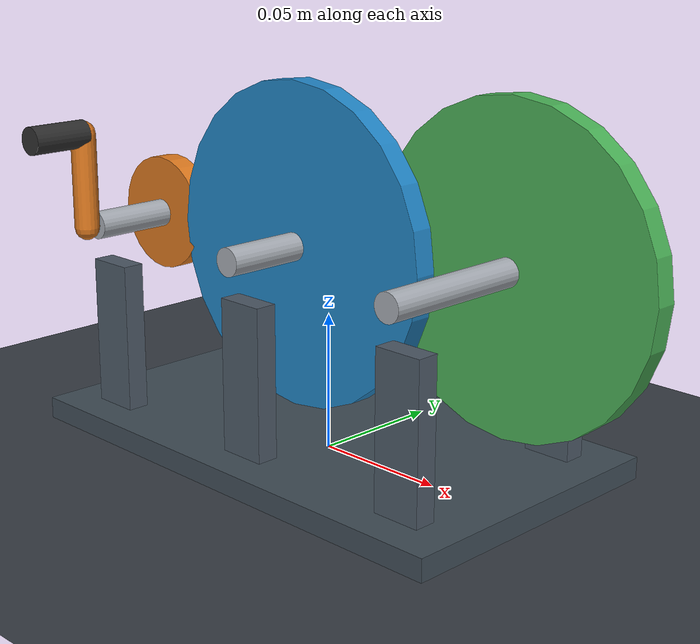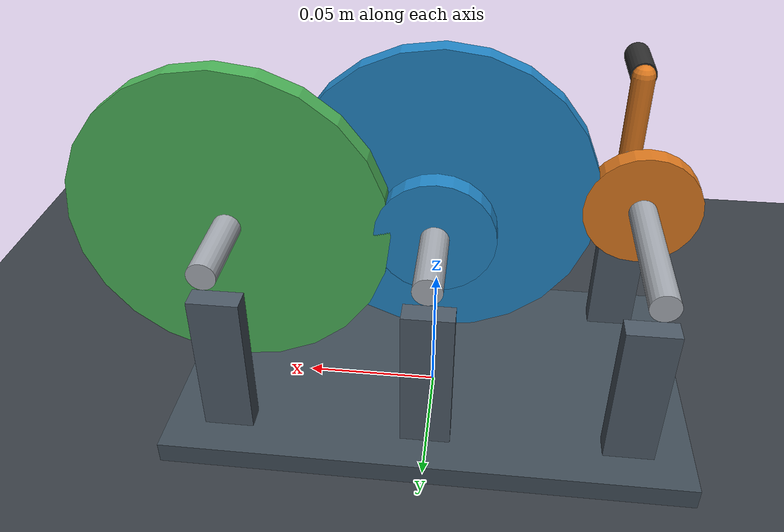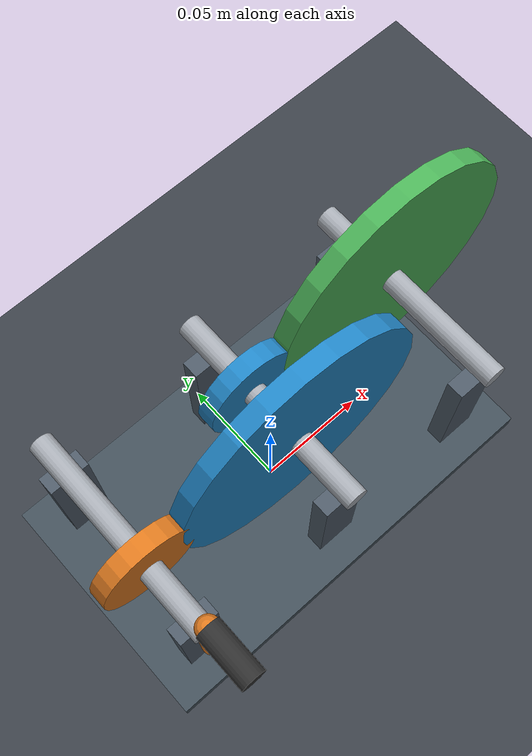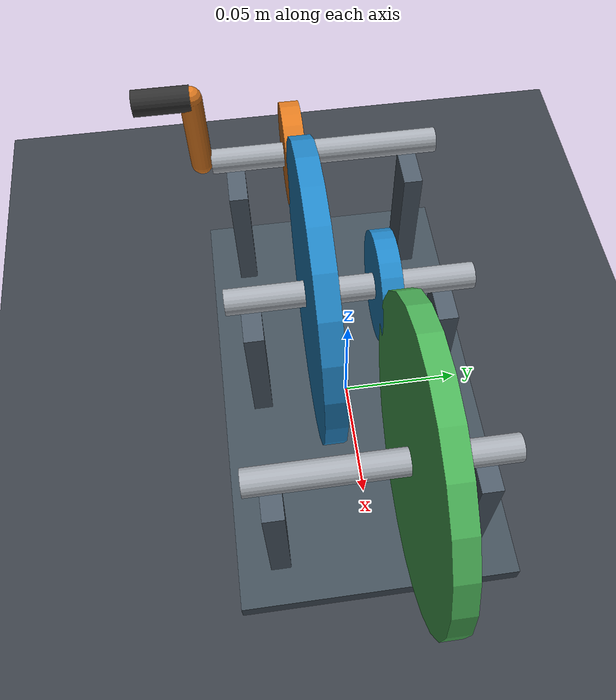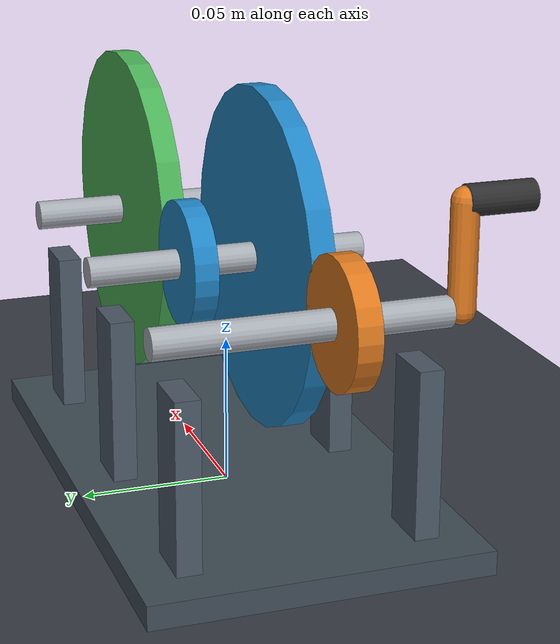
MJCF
<mujoco model="open_two_stage_9to1_reducer">
  <compiler angle="radian" autolimits="true" meshdir="meshes" />
  <option timestep="0.005" gravity="0 0 -9.81" integrator="implicitfast" />
  <default>
    <joint damping="0.05" armature="0.002" />
    <geom density="780" friction="0.6 0.01 0.001" condim="3" />
  </default>
  <worldbody>
    <geom name="ground" type="plane" size="0 0 0.1" rgba="0.22 0.24 0.27 1" />
    <body name="base" pos="0 0 0.004">
      <geom name="base_geom" type="box" size="0.095 0.055 0.004" rgba="0.25 0.30 0.34 1" />
      <geom name="input_pedestal_front" type="box" pos="-0.072 -0.038 0.0315" size="0.009 0.004 0.0275" rgba="0.3 0.35 0.4 1" />
      <geom name="input_pedestal_rear" type="box" pos="-0.072 0.038 0.0315" size="0.009 0.004 0.0275" rgba="0.3 0.35 0.4 1" />
      <geom name="intermediate_pedestal_front" type="box" pos="0 -0.038 0.0315" size="0.009 0.004 0.0275" rgba="0.3 0.35 0.4 1" />
      <geom name="intermediate_pedestal_rear" type="box" pos="0 0.038 0.0315" size="0.009 0.004 0.0275" rgba="0.3 0.35 0.4 1" />
      <geom name="output_pedestal_front" type="box" pos="0.072 -0.038 0.0315" size="0.009 0.004 0.0275" rgba="0.3 0.35 0.4 1" />
      <geom name="output_pedestal_rear" type="box" pos="0.072 0.038 0.0315" size="0.009 0.004 0.0275" rgba="0.3 0.35 0.4 1" />
    </body>
    <body name="input_shaft" pos="-0.072 0 0.078">
      <joint name="input_shaft_hinge" type="hinge" axis="0 1 0" limited="false" />
      <geom name="input_shaft_geom" type="cylinder" size="0.005 0.047" quat="0.7071068 0.7071068 0 0" rgba="0.65 0.67 0.7 1" contype="0" conaffinity="0" />
      <geom name="input_pinion" type="cylinder" pos="0 -0.013 0" size="0.021 0.004" quat="0.7071068 0.7071068 0 0" rgba="0.86 0.47 0.12 1" contype="0" conaffinity="0" />
      <geom name="hand_crank" type="capsule" fromto="0 -0.051 0 0 -0.051 0.034" size="0.0045" rgba="0.86 0.47 0.12 1" contype="0" conaffinity="0" />
      <geom name="hand_crank_grip" type="cylinder" pos="0 -0.062 0.034" size="0.005 0.011" quat="0.7071068 0.7071068 0 0" rgba="0.18 0.18 0.18 1" contype="0" conaffinity="0" />
    </body>
    <body name="intermediate_shaft" pos="0 0 0.078">
      <joint name="intermediate_shaft_hinge" type="hinge" axis="0 1 0" limited="false" />
      <geom name="intermediate_shaft_geom" type="cylinder" size="0.005 0.047" quat="0.7071068 0.7071068 0 0" rgba="0.65 0.67 0.7 1" contype="0" conaffinity="0" />
      <geom name="stage1_driven_gear" type="cylinder" pos="0 -0.013 0" size="0.057 0.004" quat="0.7071068 0.7071068 0 0" rgba="0.13 0.52 0.77 1" contype="0" conaffinity="0" />
      <geom name="stage2_pinion" type="cylinder" pos="0 0.013 0" size="0.021 0.004" quat="0.7071068 0.7071068 0 0" rgba="0.13 0.52 0.77 1" contype="0" conaffinity="0" />
    </body>
    <body name="output_shaft" pos="0.072 0 0.078">
      <joint name="output_shaft_hinge" type="hinge" axis="0 1 0" limited="false" />
      <geom name="output_shaft_geom" type="cylinder" size="0.005 0.047" quat="0.7071068 0.7071068 0 0" rgba="0.65 0.67 0.7 1" contype="0" conaffinity="0" />
      <geom name="output_gear" type="cylinder" pos="0 0.013 0" size="0.057 0.004" quat="0.7071068 0.7071068 0 0" rgba="0.29 0.69 0.34 1" contype="0" conaffinity="0" />
    </body>
  </worldbody>
  <equality>
    <joint name="stage1_ideal_mesh" joint1="input_shaft_hinge" joint2="intermediate_shaft_hinge" polycoef="0 -3 0 0 0" solref="0.002 1" />
    <joint name="stage2_ideal_mesh" joint1="intermediate_shaft_hinge" joint2="output_shaft_hinge" polycoef="0 -3 0 0 0" solref="0.002 1" />
  </equality>
  <actuator>
    <velocity name="input_crank_drive" joint="input_shaft_hinge" kv="20" ctrlrange="-4 4" />
  </actuator>
</mujoco>
